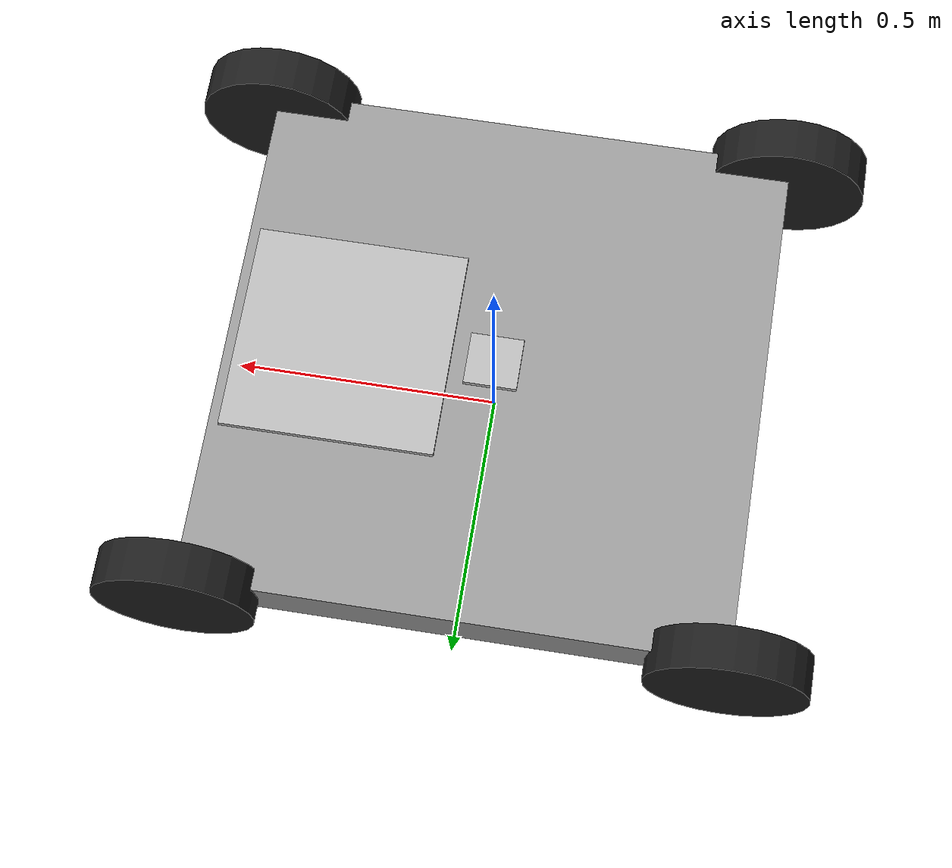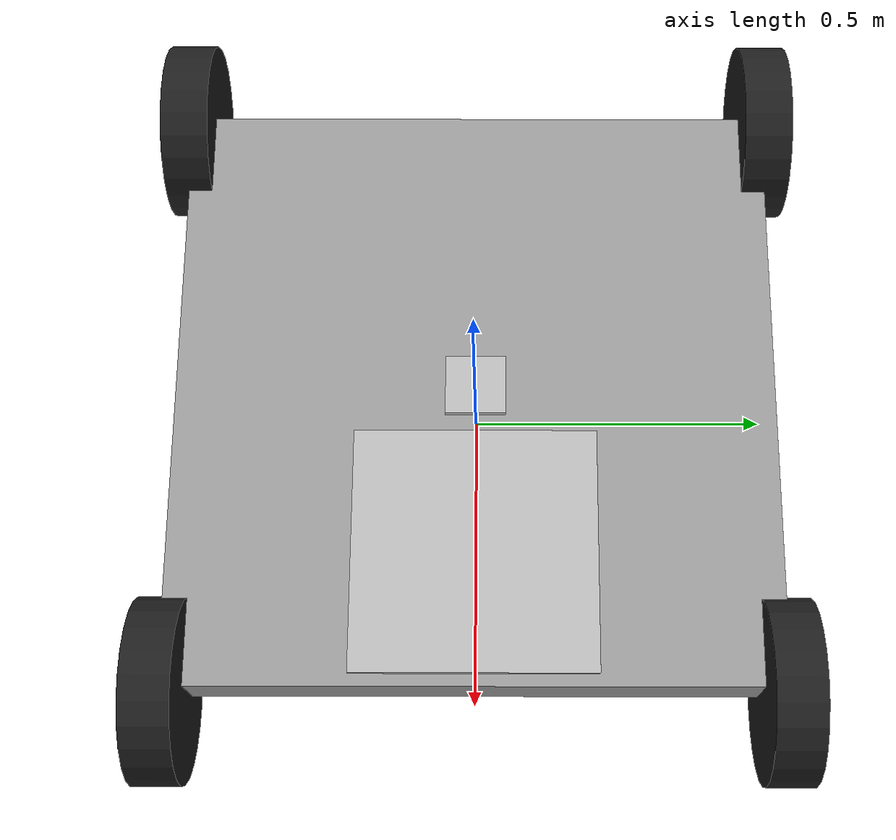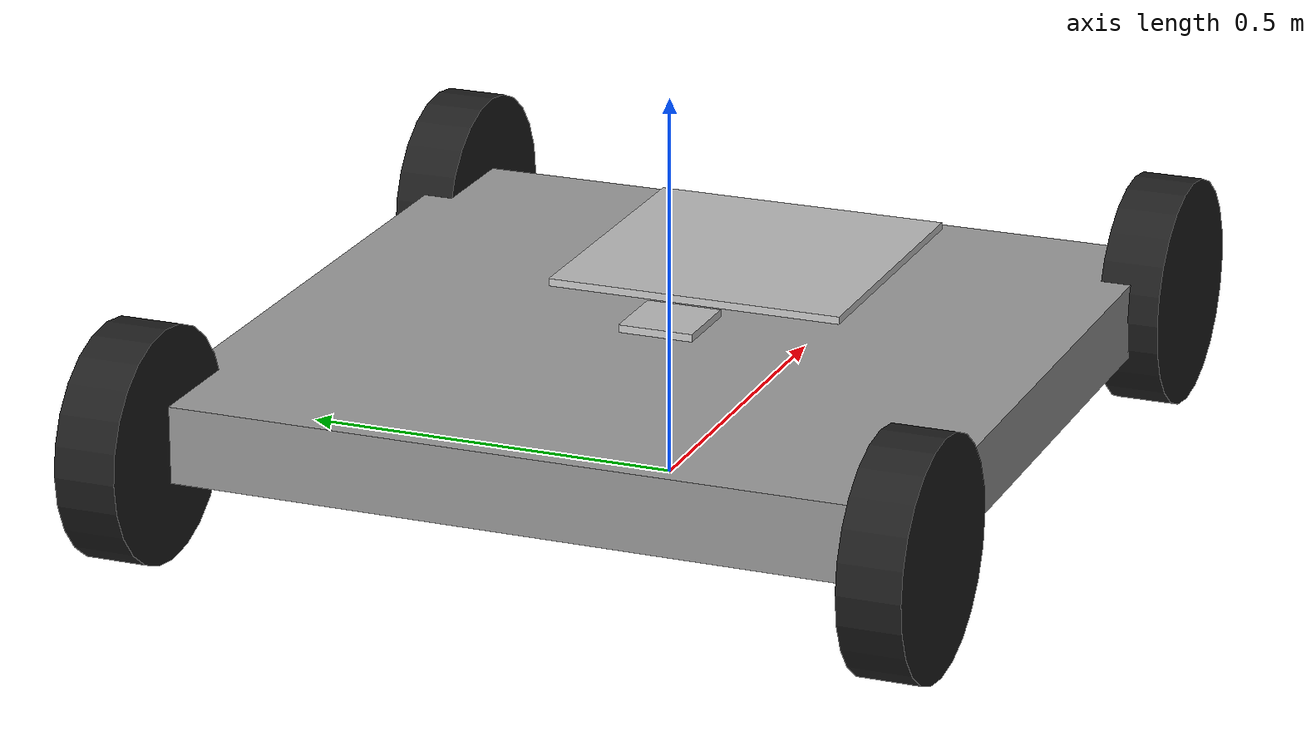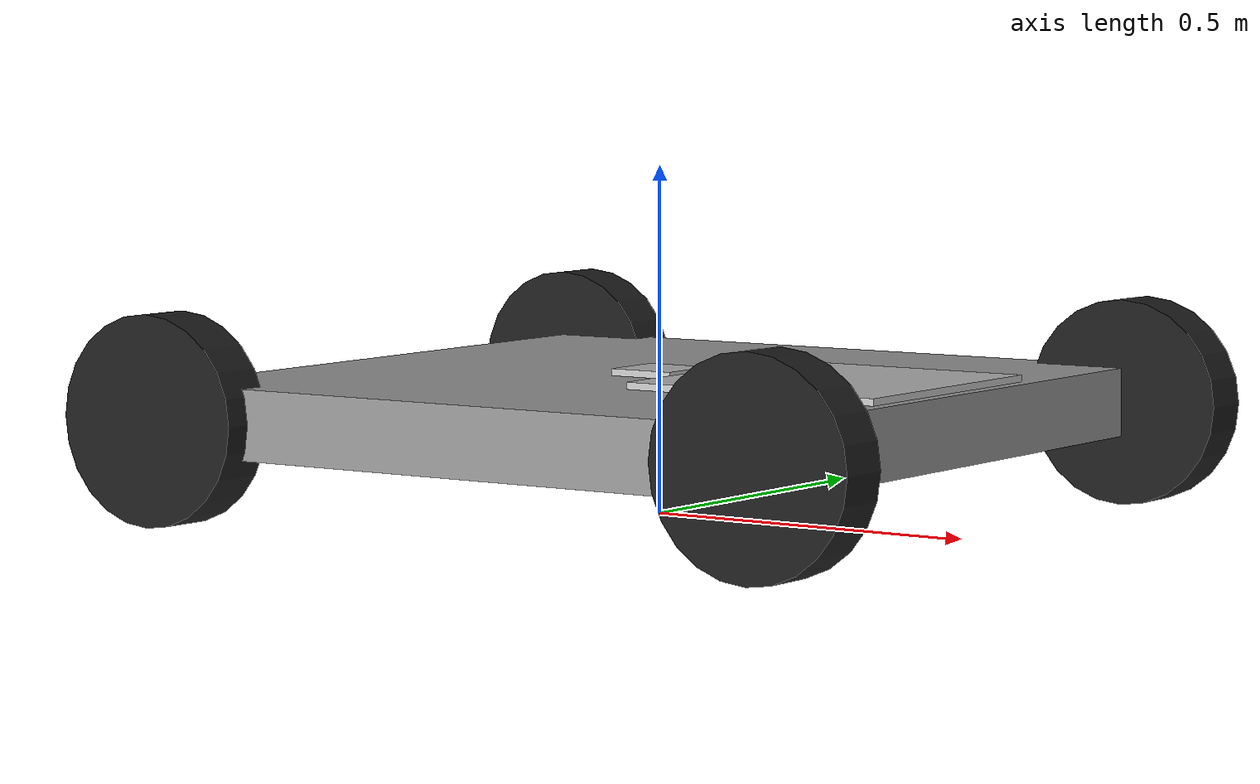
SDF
<?xml version="1.0" ?>
<sdf version="1.5">
  <model name="marker_car">

    <link name="chassis">
      <pose>0 0 0.15  0 0 0</pose>
      <inertial>
        <pose>0.1 0 0  0 0 0</pose>
        <mass>10</mass>
        <inertia>
          <ixx>0.21666666666666667</ixx>
          <iyy>0.8416666666666667</iyy>
          <izz>1.0416666666666667</izz>
          <ixy>0</ixy>
          <ixz>0</ixz>
          <iyz>0</iyz>
        </inertia>
      </inertial>
      <collision name="collision">
        <geometry>
          <box>
            <size>1.0 1.0 0.1</size>
          </box>
        </geometry>
        <surface>
          <contact>
            <ode>
              <min_depth>0.001</min_depth>
              <max_vel>0</max_vel>
            </ode>
          </contact>
          <friction>
            <ode/>
          </friction>
        </surface>
      </collision>
      <visual name="visual">
        <geometry>
          <box>
            <size>1.0 1.0 0.1</size>
          </box>
        </geometry>
        <material>
          <script>
            <uri>file://media/materials/scripts/gazebo.material</uri>
            <name>Gazebo/Grey</name>
          </script>
        </material>
      </visual>

    </link>

    <link name="wheel_front_left">
      <pose>0.5 0.5 0.15  -1.5707963267948966 0 0</pose>
      <inertial>
        <mass>0.5</mass>
        <inertia>
          <ixx>0.0030791666666666667</ixx>
          <iyy>0.0030791666666666667</iyy>
          <izz>0.005625</izz>
          <ixy>0</ixy>
          <ixz>0</ixz>
          <iyz>0</iyz>
        </inertia>
      </inertial>
      <collision name="collision">
        <geometry>
          <cylinder>
            <radius>0.15</radius>
            <length>0.08</length>
          </cylinder>
        </geometry>
        <max_contacts>1</max_contacts>
          <surface>
            <friction>
              <ode>
                <mu>1.0</mu>
                <mu2>1.0</mu2>
                <fdir1>0 0 1</fdir1>
                <slip1>0.0</slip1>
                <slip2>0.0</slip2>
              </ode>
            </friction>
            <contact>
              <ode>
                <min_depth>0.005</min_depth>
                <kp>1e8</kp>
              </ode>
            </contact>
          </surface>
      </collision>
      <visual name="visual">
        <geometry>
          <cylinder>
            <radius>0.15</radius>
            <length>0.08</length>
          </cylinder>
        </geometry>
        <material>
          <script>
            <uri>file://media/materials/scripts/gazebo.material</uri>
            <name>Gazebo/Black</name>
          </script>
        </material>
      </visual>
    </link>
    <joint name="wheel_front_left_spin" type="revolute">
      <parent>chassis</parent>
      <child>wheel_front_left</child>
      <axis>
        <xyz>0 0 1</xyz>
      </axis>
    </joint>

    <link name="wheel_front_right">
      <pose>0.5 -0.5 0.15  -1.5707963267948966 0 0</pose>
      <inertial>
        <mass>0.5</mass>
        <inertia>
          <ixx>0.0030791666666666667</ixx>
          <iyy>0.0030791666666666667</iyy>
          <izz>0.005625</izz>
          <ixy>0</ixy>
          <ixz>0</ixz>
          <iyz>0</iyz>
        </inertia>
      </inertial>
      <collision name="collision">
        <geometry>
          <cylinder>
            <radius>0.15</radius>
            <length>0.08</length>
          </cylinder>
        </geometry>
        <max_contacts>1</max_contacts>
          <surface>
            <friction>
              <ode>
                <mu>1.0</mu>
                <mu2>1.0</mu2>
                <fdir1>0 0 1</fdir1>
                <slip1>0.0</slip1>
                <slip2>0.0</slip2>
              </ode>
            </friction>
            <contact>
              <ode>
                <min_depth>0.005</min_depth>
                <kp>1e8</kp>
              </ode>
            </contact>
          </surface>
      </collision>
      <visual name="visual">
        <geometry>
          <cylinder>
            <radius>0.15</radius>
            <length>0.08</length>
          </cylinder>
        </geometry>
        <material>
          <script>
            <uri>file://media/materials/scripts/gazebo.material</uri>
            <name>Gazebo/Black</name>
          </script>
        </material>
      </visual>
    </link>
    <joint name="wheel_front_right_spin" type="revolute">
      <parent>chassis</parent>
      <child>wheel_front_right</child>
      <axis>
        <xyz>0 0 1</xyz>
      </axis>
    </joint>

    <link name="wheel_rear_left">
      <pose>-0.5 0.5 0.15  -1.5707963267948966 0 0</pose>
      <inertial>
        <mass>0.5</mass>
        <inertia>
          <ixx>0.0030791666666666667</ixx>
          <iyy>0.0030791666666666667</iyy>
          <izz>0.005625</izz>
          <ixy>0</ixy>
          <ixz>0</ixz>
          <iyz>0</iyz>
        </inertia>
      </inertial>
      <collision name="collision">
        <geometry>
          <cylinder>
            <radius>0.15</radius>
            <length>0.08</length>
          </cylinder>
        </geometry>
        <max_contacts>1</max_contacts>
          <surface>
            <friction>
              <ode>
                <mu>1.0</mu>
                <mu2>1.0</mu2>
                <fdir1>0 0 1</fdir1>
                <slip1>0.0</slip1>
                <slip2>0.0</slip2>
              </ode>
            </friction>
            <contact>
              <ode>
                <min_depth>0.005</min_depth>
                <kp>1e8</kp>
              </ode>
            </contact>
          </surface>
      </collision>
      <visual name="visual">
        <geometry>
          <cylinder>
            <radius>0.15</radius>
            <length>0.08</length>
          </cylinder>
        </geometry>
        <material>
          <script>
            <uri>file://media/materials/scripts/gazebo.material</uri>
            <name>Gazebo/Black</name>
          </script>
        </material>
      </visual>
    </link>
    <joint name="wheel_rear_left_spin" type="revolute">
      <parent>chassis</parent>
      <child>wheel_rear_left</child>
      <axis>
        <xyz>0 0 1</xyz>
      </axis>
    </joint>

    <link name="wheel_rear_right">
      <pose>-0.5 -0.5 0.15  -1.5707963267948966 0 0</pose>
      <inertial>
        <mass>0.5</mass>
        <inertia>
          <ixx>0.0030791666666666667</ixx>
          <iyy>0.0030791666666666667</iyy>
          <izz>0.005625</izz>
          <ixy>0</ixy>
          <ixz>0</ixz>
          <iyz>0</iyz>
        </inertia>
      </inertial>
      <collision name="collision">
        <geometry>
          <cylinder>
            <radius>0.15</radius>
            <length>0.08</length>
          </cylinder>
        </geometry>
        <max_contacts>1</max_contacts>
          <surface>
            <friction>
              <ode>
                <mu>1.0</mu>
                <mu2>1.0</mu2>
                <fdir1>0 0 1</fdir1>
                <slip1>0.0</slip1>
                <slip2>0.0</slip2>
              </ode>
            </friction>
            <contact>
              <ode>
                <min_depth>0.005</min_depth>
                <kp>1e8</kp>
              </ode>
            </contact>
          </surface>
      </collision>
      <visual name="visual">
        <geometry>
          <cylinder>
            <radius>0.15</radius>
            <length>0.08</length>
          </cylinder>
        </geometry>
        <material>
          <script>
            <uri>file://media/materials/scripts/gazebo.material</uri>
            <name>Gazebo/Black</name>
          </script>
        </material>
      </visual>
    </link>
    <joint name="wheel_rear_right_spin" type="revolute">
      <parent>chassis</parent>
      <child>wheel_rear_right</child>
      <axis>
        <xyz>0 0 1</xyz>
      </axis>
    </joint>

    <link name="target_link">
      <pose>0.28 0 0.2 0 0 1.57</pose>
      <collision name="collision">
        <geometry>
          <box>
            <size>0.2 0.2 0.01</size>
          </box>
        </geometry>
      </collision>
      <visual name="visual">
        <geometry>
          <mesh>
            <uri>model://marker_car/meshes/AprilTag_36h11(6x6).dae</uri>
          </mesh>
        </geometry>
      </visual>
    </link>
    <joint name="target_joint" type="fixed">
      <parent>chassis</parent>
      <child>target_link</child>
      <axis>
        <xyz>0 0 0.12</xyz>
      </axis>
    </joint>

    <link name="target_link1">
      <pose>0.0 0 0.2 0 0 1.57</pose>
      <collision name="collision">
        <geometry>
          <box>
            <size>0.05 0.05 0.01</size>
          </box>
        </geometry>
      </collision>
      <visual name="visual">
        <geometry>
          <mesh>
            <uri>model://marker_car/meshes/AprilTag_36h11(6x6)_1.dae</uri>
          </mesh>
        </geometry>
      </visual>
    </link>
    <joint name="target_joint1" type="fixed">
      <parent>chassis</parent>
      <child>target_link1</child>
      <axis>
        <xyz>0 0 0.12</xyz>
      </axis>
    </joint>
  </model>
</sdf>
